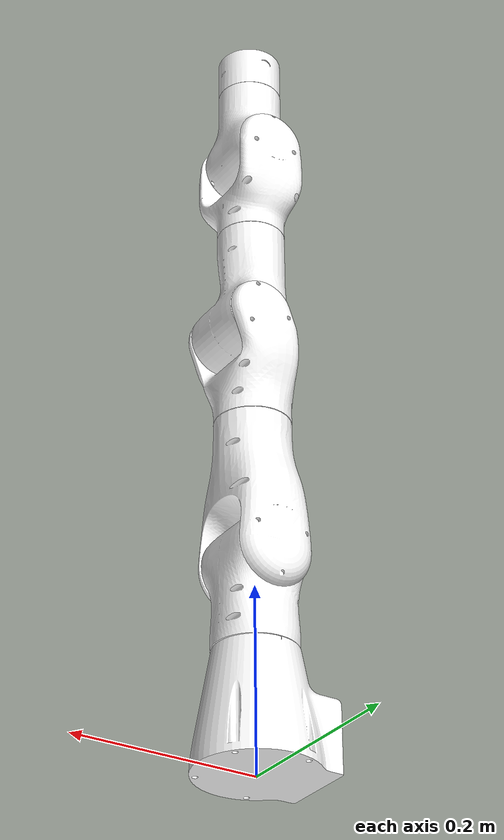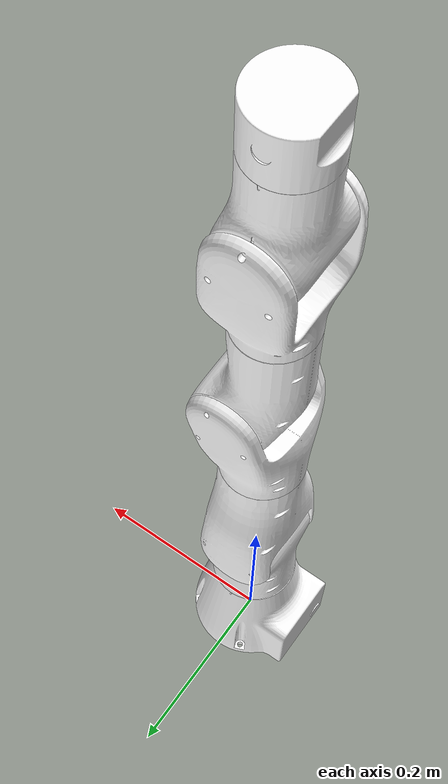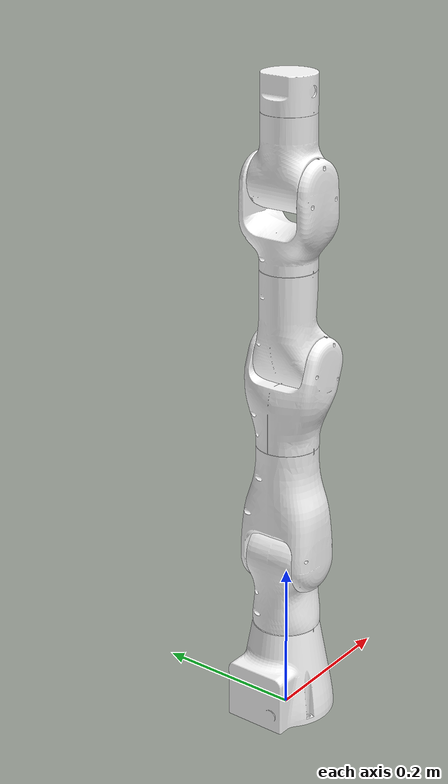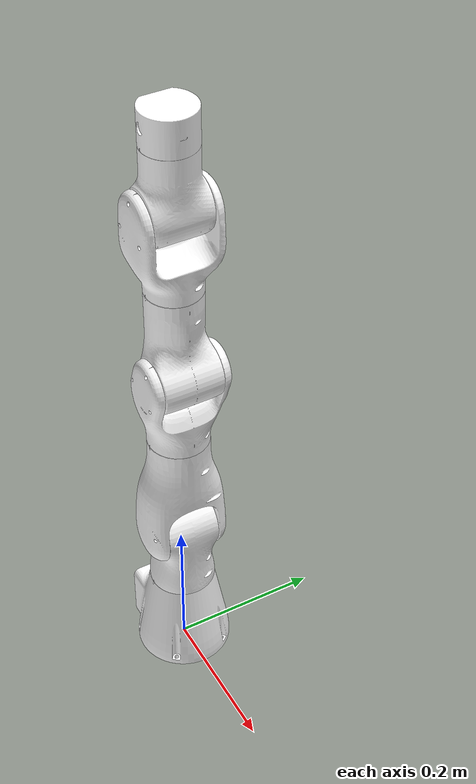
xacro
<?xml version="1.0"?>
<robot xmlns:xacro="http://www.ros.org/wiki/xacro" name="MercuryE1">
    <xacro:arg name="initial_positions_file" default="initial_positions.yaml" />

    <!-- Import MercuryE1 urdf file -->
    <xacro:include filename="$(find mercury_description)/urdf/mercury_e1/mercury_e1.urdf" />

    <!-- Import control_xacro -->
    <xacro:include filename="MercuryE1.ros2_control.xacro" />

    <xacro:MercuryE1_ros2_control name="FakeSystem" initial_positions_file="$(arg initial_positions_file)"/>

</robot>

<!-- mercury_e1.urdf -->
<robot
  name="MercuryE1">

  <link name="dummy_link"/>

  <joint name="dummy" type="fixed">
    <parent link="dummy_link"/>
    <child link="base_link"/>
  </joint>

  <link
    name="base_link">
    <inertial>
      <origin
        xyz="-0.00614629756444984 0.0374474669440089 -0.664060840607714"
        rpy="0 0 0" />
      <mass
        value="1.31191278229374" />
      <inertia
        ixx="0.00259985598913733"
        ixy="-5.15846448063641E-07"
        ixz="-6.41615454841017E-05"
        iyy="0.00290399956299818"
        iyz="-2.62938103761196E-07"
        izz="0.0024046436898186" />
    </inertial>
    <visual>
      <origin
        xyz="0 -0.03745 0.72"
        rpy="0 0 0" />
      <geometry>
        <mesh
          filename="package://mercury_description/urdf/mercury_e1/base_link.STL" />
      </geometry>
      <material
        name="">
        <color
          rgba="1 1 1 1" />
      </material>
    </visual>
    <collision>
      <origin
        xyz="0 -0.03745 0.72"
        rpy="0 0 0" />
      <geometry>
        <mesh
          filename="package://mercury_description/urdf/mercury_e1/base_link.STL" />
      </geometry>
    </collision>
  </link>
   <link
    name="J1_Link">
    <inertial>
      <origin
        xyz="1.63099773269339E-07 0.000794315134841039 -0.0616424140432803"
        rpy="0 0 0" />
      <mass
        value="1.01999225695505" />
      <inertia
        ixx="0.00156246"
        ixy="-0.0000018"
        ixz="0.00001175"
        iyy="0.00170282"
        iyz="-0.00007527"
        izz="0.00076009" />
    </inertial>
    <visual>
      <origin
        xyz="0 0 0"
        rpy="0 0 0" />
      <geometry>
        <mesh
          filename="package://mercury_description/urdf/mercury_e1/J1_Link.STL" />
      </geometry>
      <material
        name="">
        <color
          rgba="1 1 1 1" />
      </material>
    </visual>
    <collision>
      <origin
        xyz="0 0 0"
        rpy="0 0 0" />
      <geometry>
        <mesh
          filename="package://mercury_description/urdf/mercury_e1/J1_Link.STL" />
      </geometry>
    </collision>
  </link>
  <joint
    name="Joint1"
    type="revolute">
    <origin
      xyz="0 0 0.255"
      rpy="0 0 0" />
    <parent
      link="base_link" />
    <child
      link="J1_Link" />
    <axis
      xyz="0 0 1" />
    <limit
      lower="-2.7"
      upper="2.7"
      effort="10000"
      velocity="2" />
  </joint>
  <link
    name="J2_Link">
    <inertial>
      <origin
        xyz="-0.000692491703993832 0.0366463656174463 0.0763458249928218"
        rpy="0 0 0" />
      <mass
        value="0.865977615667264" />
      <inertia
        ixx="0.00276487"
        ixy="0.0000007"
        ixz="0.00000995"
        iyy="0.00251889"
        iyz="0.0000109"
        izz="0.00133693" />
    </inertial>
    <visual>
      <origin
        xyz="0 0 0"
        rpy="0 0 0" />
      <geometry>
        <mesh
          filename="package://mercury_description/urdf/mercury_e1/J2_Link.STL" />
      </geometry>
      <material
        name="">
        <color
          rgba="1 1 1 1" />
      </material>
    </visual>
    <collision>
      <origin
        xyz="0 0 0"
        rpy="0 0 0" />
      <geometry>
        <mesh
          filename="package://mercury_description/urdf/mercury_e1/J2_Link.STL" />
      </geometry>
    </collision>
  </link>
  <joint
    name="Joint2"
    type="revolute">
    <origin
      xyz="0 -0.0365011426633475 -0.0292499753403238"
      rpy="0 0 0" />
    <parent
      link="J1_Link" />
    <child
      link="J2_Link" />
    <axis
      xyz="0 1 0" />
    <limit
      lower="-0.96"
      upper="1.83"
      effort="10000"
      velocity="2" />
  </joint>
  <link
    name="J3_Link">
    <inertial>
      <origin
        xyz="0.00106685066376856 -0.000114296203286587 0.0548083026775011"
        rpy="0 0 0" />
      <mass
        value="0.562852488998004" />
      <inertia
        ixx="0.0009047"
        ixy="-0.00000617"
        ixz="0.00003274"
        iyy="0.00072014"
        iyz="-0.00002186"
        izz="0.00065677" />
    </inertial>
    <visual>
      <origin
        xyz="0 0 0"
        rpy="0 0 0" />
      <geometry>
        <mesh
          filename="package://mercury_description/urdf/mercury_e1/J3_Link.STL" />
      </geometry>
      <material
        name="">
        <color
          rgba="1 1 1 1" />
      </material>
    </visual>
    <collision>
      <origin
        xyz="0 0 0"
        rpy="0 0 0" />
      <geometry>
        <mesh
          filename="package://mercury_description/urdf/mercury_e1/J3_Link.STL" />
      </geometry>
    </collision>
  </link>
  <joint
    name="Joint3"
    type="revolute">
    <origin
      xyz="0.000749999999985258 0.0365481432413965 0.156250000000001"
      rpy="0 0 0" />
    <parent
      link="J2_Link" />
    <child
      link="J3_Link" />
    <axis
      xyz="0 0 1" />
    <limit
      lower="-2.79"
      upper="2.79"
      effort="10000"
      velocity="2" />
  </joint>
  <link
    name="J4_Link">
    <inertial>
      <origin
        xyz="-0.00944917060729864 0.0386243263271292 0.0380534911769193"
        rpy="0 0 0" />
      <mass
        value="0.688296580358887" />
      <inertia
        ixx="0.00251597"
        ixy="-0.00000876"
        ixz="-0.0003227"
        iyy="0.00256734"
        iyz="0.000022"
        izz="0.00077279" />
    </inertial>
    <visual>
      <origin
        xyz="0 0 0"
        rpy="0 0 0" />
      <geometry>
        <mesh
          filename="package://mercury_description/urdf/mercury_e1/J4_Link.STL" />
      </geometry>
      <material
        name="">
        <color
          rgba="1 1 1 1" />
      </material>
    </visual>
    <collision>
      <origin
        xyz="0 0 0"
        rpy="0 0 0" />
      <geometry>
        <mesh
          filename="package://mercury_description/urdf/mercury_e1/J4_Link.STL" />
      </geometry>
    </collision>
  </link>
  <joint
    name="Joint4"
    type="revolute">
    <origin
      xyz="0.0149999999999998 -0.0389999807242169 0.111"
      rpy="0 0 0" />
    <parent
      link="J3_Link" />
    <child
      link="J4_Link" />
    <axis
      xyz="0 -1 0" />
    <limit
      lower="-2.35"
      upper="0.314"
      effort="10000"
      velocity="2" />
  </joint>
  <link
    name="J5_Link">
    <inertial>
      <origin
        xyz="-6.2605294924448E-07 0.000510501714815006 0.0513805281375826"
        rpy="0 0 0" />
      <mass
        value="0.410203464751654" />
      <inertia
        ixx="0.00083642"
        ixy="0.000000"
        ixz="0.00000002"
        iyy="0.0005751"
        iyz="-0.00003248"
        izz="0.00065266"  />
    </inertial>
    <visual>
      <origin
        xyz="0 0 0"
        rpy="0 0 0" />
      <geometry>
        <mesh
          filename="package://mercury_description/urdf/mercury_e1/J5_Link.STL" />
      </geometry>
      <material
        name="">
        <color
          rgba="1 1 1 1" />
      </material>
    </visual>
    <collision>
      <origin
        xyz="0 0 0"
        rpy="0 0 0" />
      <geometry>
        <mesh
          filename="package://mercury_description/urdf/mercury_e1/J5_Link.STL" />
      </geometry>
    </collision>
  </link>
  <joint
    name="Joint5"
    type="revolute">
    <origin
      xyz="-0.0149999999999995 0.0390000000000039 0.11995"
      rpy="0 0 0" />
    <parent
      link="J4_Link" />
    <child
      link="J5_Link" />
    <axis
      xyz="0 0 1" />
    <limit
      lower="-2.79"
      upper="2.79"
      effort="10000"
      velocity="2" />
  </joint>
  <link
    name="J6_Link">
    <inertial>
      <origin
        xyz="0.00008 0.03563 0.03304"
        rpy="0 0 0" />
      <mass
        value="0.98" />
      <inertia
        ixx="0.00169248"
        ixy="0.00000053"
        ixz="0.0000044"
        iyy="0.00167564"
        iyz="0.0000515"
        izz="0.0006143"  />
    </inertial>
    <visual>
      <origin
        xyz="0 0 0"
        rpy="0 0 0" />
      <geometry>
        <mesh
          filename="package://mercury_description/urdf/mercury_e1/J6_Link.STL" />
      </geometry>
      <material
        name="">
        <color
          rgba="1 1 1 1" />
      </material>
    </visual>
    <collision>
      <origin
        xyz="0 0 0"
        rpy="0 0 0" />
      <geometry>
        <mesh
          filename="package://mercury_description/urdf/mercury_e1/J6_Link.STL" />
      </geometry>
    </collision>
  </link>
  <joint
    name="Joint6"
    type="revolute">
    <origin
      xyz="0 -0.0374999999991969 0.107499932214404"
      rpy="0 0 0" />
    <parent
      link="J5_Link" />
    <child
      link="J6_Link" />
    <axis
      xyz="0 -1 0" />
    <limit
      lower="-1.74"
      upper="2.042"
      effort="10000"
      velocity="2" />
  </joint>
  <link
    name="J7_Link">
    <inertial>
      <origin
        xyz="0.000775739159792109 5.39776754843804E-05 0.0230765836156535"
        rpy="0 0 0" />
      <mass
        value="0.158638180498606" />
      <inertia
        ixx="0.0000364"
        ixy="0.0000003"
        ixz="0.00000025"
        iyy="0.00003818"
        iyz="-0.00000155"
        izz="0.00005159" />
    </inertial>
    <visual>
      <origin
        xyz="0 0 0"
        rpy="0 0 0" />
      <geometry>
        <mesh
          filename="package://mercury_description/urdf/mercury_e1/J7_Link.STL" />
      </geometry>
      <material
        name="">
        <color
          rgba="1 1 1 1" />
      </material>
    </visual>
    <collision>
      <origin
        xyz="0 0 0"
        rpy="0 0 0" />
      <geometry>
        <mesh
          filename="package://mercury_description/urdf/mercury_e1/J7_Link.STL" />
      </geometry>
    </collision>
  </link>
  <joint
    name="Joint7"
    type="revolute">
    <origin
      xyz="0 0.037499986816365 0.0819499999999993"
      rpy="0 0 0" />
    <parent
      link="J6_Link" />
    <child
      link="J7_Link" />
    <axis
      xyz="0 0 1" />
    <limit
      lower="-2.35"
      upper="2.35"
      effort="10000"
      velocity="2" />
  </joint>
</robot>
